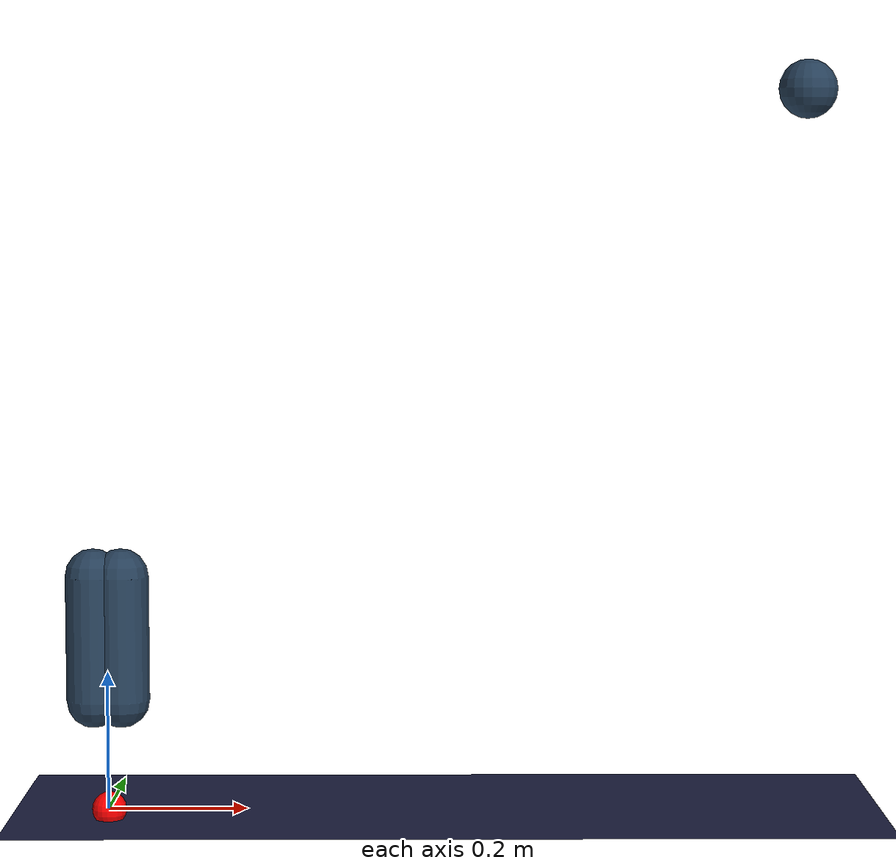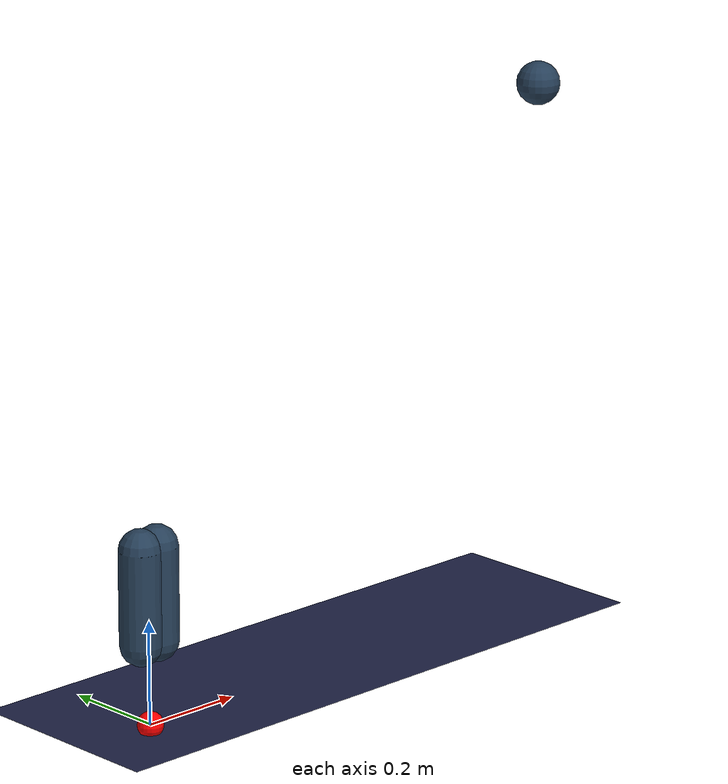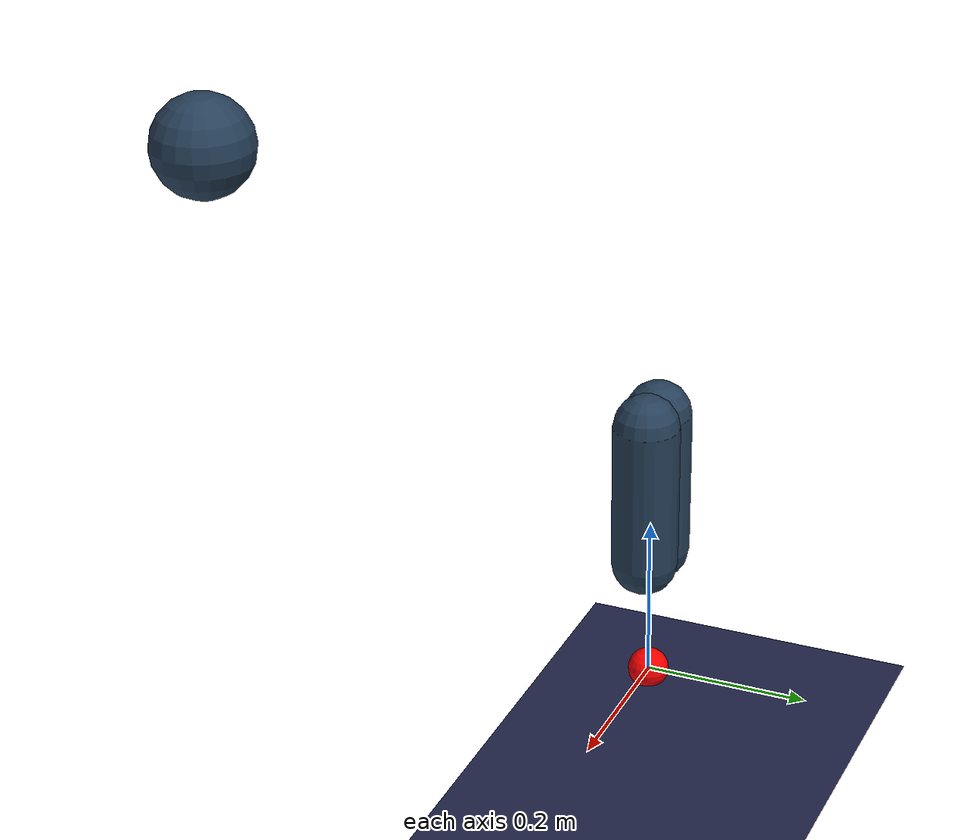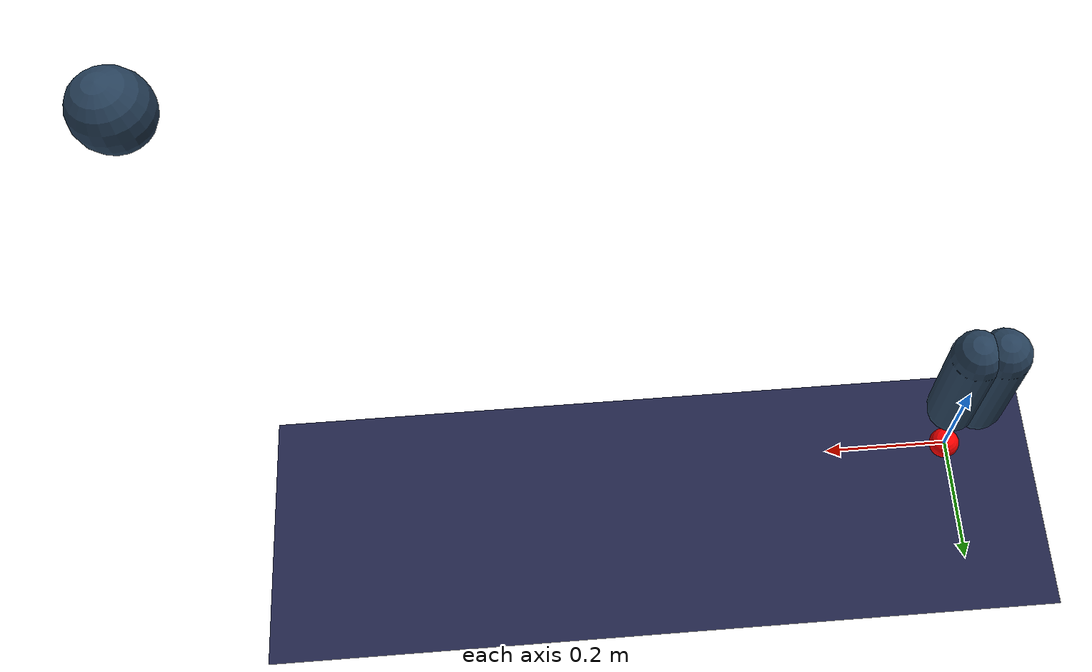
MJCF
<mujoco model="planar point mass">
    <visual>
        <quality shadowsize="2048" />
        <headlight ambient="0.4 0.4 0.4" diffuse="0.8 0.8 0.8" specular="0.1 0.1 0.1" />
    </visual>

  <option impratio="10" iterations="100" ls_iterations="4" timestep="0.01">
    <flag eulerdamp="disable"/>
  </option>

  <custom>
    <numeric data="15" name="max_contact_points"/>
    <numeric data="15" name="max_geom_pairs"/>
  </custom>

    <asset>
        <texture type="skybox" name="skybox" builtin="gradient" mark="random" rgb1="0.4 0.6 0.8" rgb2="0 0 0" markrgb="1 1 1" width="800" height="4800" />
        <texture type="2d" name="grid" builtin="checker" mark="edge" rgb1="0.1 0.2 0.3" rgb2="0.2 0.3 0.4" markrgb="0.2 0.3 0.4" width="300" height="300" />
        <material name="grid" texture="grid" texuniform="true" reflectance="0.2" />
    </asset>

    <worldbody>
        <geom name="ground2" size="5 5 0.1" pos="-0.0 0 -0.013" type="plane" rgba=".123 .140 .28 1" contype="1" conaffinity="2"/>

        <body name="object1" pos="0.0 0.0 0.25">
            <joint name="free_joint_body_1" type="ball" damping="0.0001" armature="0.0"/>
            <camera name="cam1" pos="0 -0.3 0.3" xyaxes="1 0 0 0 0.7 0.7"/>
             <geom name="pointmass1" type="capsule" size=".04 0.09" material="grid" mass="0.005" condim="3" contype="7" group="2" solref="0.01 1.0" pos="0.02 0.0 0.0"/>
             <geom name="pointmass3" type="capsule" size=".04 0.09" material="grid" mass="0.005" condim="3" contype="7" group="2" solref="0.01 1.0" pos="-0.02 0.0 0.0"/>
        </body>

        <body name="object2" pos="1.0 0.0 1.035">
            <joint name="free_joint_body_2" type="free" damping="0.0001"/>
            <camera name="cam2" pos="0 -0.3 0.3" xyaxes="1 0 0 0 0.7 0.7"/>
            <geom name="pointmass2" type="sphere" size=".042" material="grid" mass=".01" condim="3" contype="7"  solimp="0.1 0.95 0.1 0.5 2" friction="1.1 0.01 0.003" group="2" solref="0.01 1.0"/>
        </body>
        <body mocap="true" name="mocap_target">
          <geom type="sphere" size="0.025" rgba="1 0 0 1" contype="0" conaffinity="0"/>
        </body>
    </worldbody>
</mujoco>
